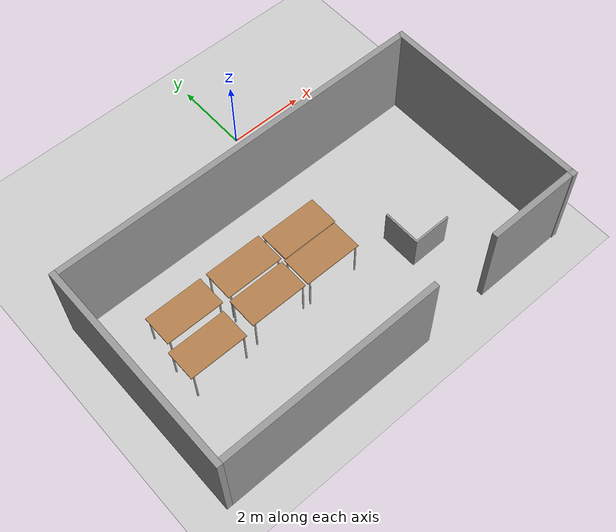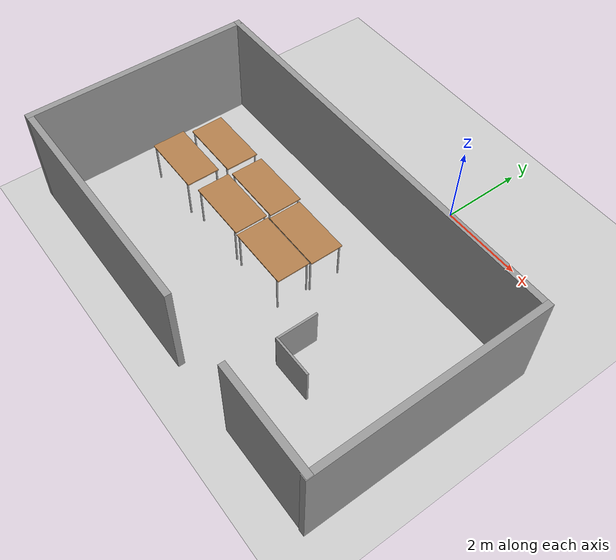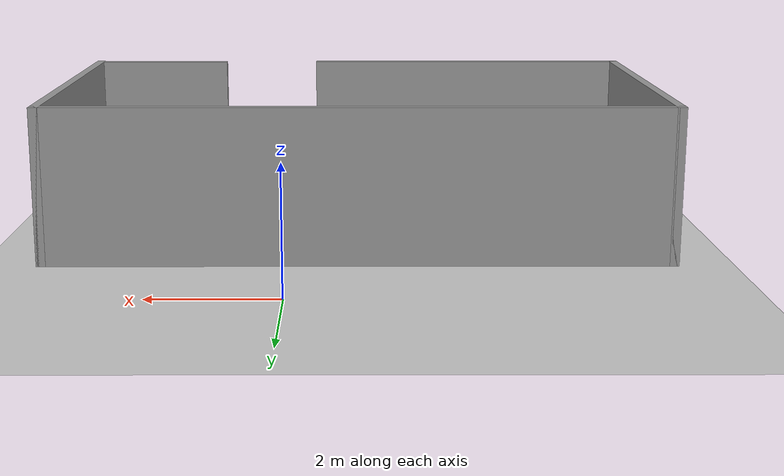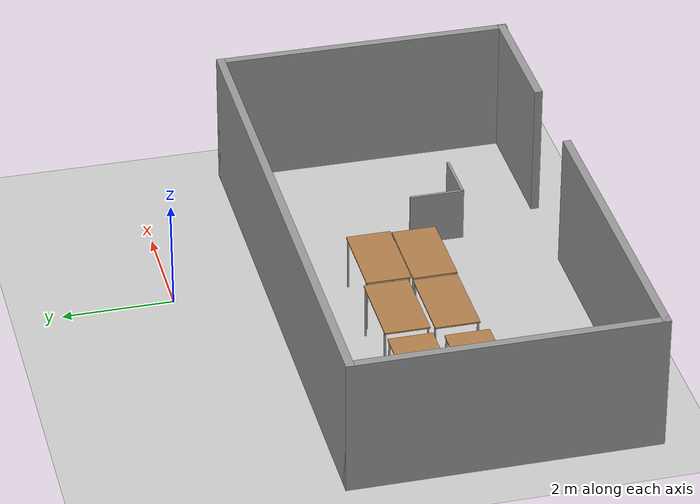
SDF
<sdf version="1.7">
 <world name="default">
  <light name="sun" type="directional">
   <pose>0 0 10 0 -0 0</pose>
   <diffuse>0.8 0.8 0.8 1</diffuse>
   <specular>0.2 0.2 0.2 1</specular>
   <attenuation>
    <range>1000</range>
    <constant>0.9</constant>
    <linear>0.01</linear>
    <quadratic>0.001</quadratic>
   </attenuation>
   <direction>-0.5 0.1 -0.9</direction>
   <spot><inner_angle>0</inner_angle><outer_angle>0</outer_angle><falloff>0</falloff></spot>
  </light>
  <model name="ground_plane">
   <static>1</static>
   <link name="link">
    <collision name="collision">
     <geometry><plane><normal>0 0 1</normal><size>100 100</size></plane></geometry>
     <surface>
      <contact><collide_bitmask>65535</collide_bitmask></contact>
      <friction><ode><mu>100</mu><mu2>50</mu2></ode></friction>
     </surface>
    </collision>
    <visual name="visual">
     <cast_shadows>0</cast_shadows>
     <geometry><plane><normal>0 0 1</normal><size>100 100</size></plane></geometry>
     <material>
      <script><uri>file://media/materials/scripts/gazebo.material</uri><name>Gazebo/Grey</name></script>
     </material>
    </visual>
   </link>
  </model>
  <gravity>0 0 -9.8</gravity>
  <magnetic_field>6e-06 2.3e-05 -4.2e-05</magnetic_field>
  <atmosphere type="adiabatic"/>
  <physics type="ode">
   <max_step_size>0.001</max_step_size>
   <real_time_factor>1</real_time_factor>
   <real_time_update_rate>1000</real_time_update_rate>
  </physics>
  <scene><ambient>0.4 0.4 0.4 1</ambient><background>0.7 0.7 0.7 1</background><shadows>1</shadows></scene>
  <spherical_coordinates>
   <surface_model>EARTH_WGS84</surface_model>
   <latitude_deg>0</latitude_deg>
   <longitude_deg>0</longitude_deg>
   <elevation>0</elevation>
   <heading_deg>0</heading_deg>
  </spherical_coordinates>
  <model name="table">
   <static>1</static>
   <link name="link">
    <collision name="surface">
     <pose>0 0 1 0 -0 0</pose>
     <geometry><box><size>1.5 0.8 0.03</size></box></geometry>
     <surface><friction><ode><mu>0.6</mu><mu2>0.6</mu2></ode></friction></surface>
    </collision>
    <visual name="visual1">
     <pose>0 0 1 0 -0 0</pose>
     <geometry><box><size>1.5 0.8 0.03</size></box></geometry>
     <material>
      <script><uri>file://media/materials/scripts/gazebo.material</uri><name>Gazebo/Wood</name></script>
     </material>
    </visual>
    <collision name="front_left_leg">
     <pose>0.68 0.38 0.5 0 -0 0</pose>
     <geometry><cylinder><radius>0.02</radius><length>1</length></cylinder></geometry>
    </collision>
    <visual name="front_left_leg">
     <pose>0.68 0.38 0.5 0 -0 0</pose>
     <geometry><cylinder><radius>0.02</radius><length>1</length></cylinder></geometry>
     <material>
      <script><uri>file://media/materials/scripts/gazebo.material</uri><name>Gazebo/Grey</name></script>
     </material>
    </visual>
    <collision name="front_right_leg">
     <pose>0.68 -0.38 0.5 0 -0 0</pose>
     <geometry><cylinder><radius>0.02</radius><length>1</length></cylinder></geometry>
    </collision>
    <visual name="front_right_leg">
     <pose>0.68 -0.38 0.5 0 -0 0</pose>
     <geometry><cylinder><radius>0.02</radius><length>1</length></cylinder></geometry>
     <material>
      <script><uri>file://media/materials/scripts/gazebo.material</uri><name>Gazebo/Grey</name></script>
     </material>
    </visual>
    <collision name="back_right_leg">
     <pose>-0.68 -0.38 0.5 0 -0 0</pose>
     <geometry><cylinder><radius>0.02</radius><length>1</length></cylinder></geometry>
    </collision>
    <visual name="back_right_leg">
     <pose>-0.68 -0.38 0.5 0 -0 0</pose>
     <geometry><cylinder><radius>0.02</radius><length>1</length></cylinder></geometry>
     <material>
      <script><uri>file://media/materials/scripts/gazebo.material</uri><name>Gazebo/Grey</name></script>
     </material>
    </visual>
    <collision name="back_left_leg">
     <pose>-0.68 0.38 0.5 0 -0 0</pose>
     <geometry><cylinder><radius>0.02</radius><length>1</length></cylinder></geometry>
    </collision>
    <visual name="back_left_leg">
     <pose>-0.68 0.38 0.5 0 -0 0</pose>
     <geometry><cylinder><radius>0.02</radius><length>1</length></cylinder></geometry>
     <material>
      <script><uri>file://media/materials/scripts/gazebo.material</uri><name>Gazebo/Grey</name></script>
     </material>
    </visual>
   </link>
   <pose>-0.980326 -4.3195 0 0 -0 0</pose>
  </model>
  <model name="table_clone">
   <static>1</static>
   <link name="link">
    <collision name="surface">
     <pose>0 0 1 0 -0 0</pose>
     <geometry><box><size>1.5 0.8 0.03</size></box></geometry>
     <surface><friction><ode><mu>0.6</mu><mu2>0.6</mu2></ode></friction></surface>
    </collision>
    <visual name="visual1">
     <pose>0 0 1 0 -0 0</pose>
     <geometry><box><size>1.5 0.8 0.03</size></box></geometry>
     <material>
      <script><uri>file://media/materials/scripts/gazebo.material</uri><name>Gazebo/Wood</name></script>
     </material>
    </visual>
    <collision name="front_left_leg">
     <pose>0.68 0.38 0.5 0 -0 0</pose>
     <geometry><cylinder><radius>0.02</radius><length>1</length></cylinder></geometry>
    </collision>
    <visual name="front_left_leg">
     <pose>0.68 0.38 0.5 0 -0 0</pose>
     <geometry><cylinder><radius>0.02</radius><length>1</length></cylinder></geometry>
     <material>
      <script><uri>file://media/materials/scripts/gazebo.material</uri><name>Gazebo/Grey</name></script>
     </material>
    </visual>
    <collision name="front_right_leg">
     <pose>0.68 -0.38 0.5 0 -0 0</pose>
     <geometry><cylinder><radius>0.02</radius><length>1</length></cylinder></geometry>
    </collision>
    <visual name="front_right_leg">
     <pose>0.68 -0.38 0.5 0 -0 0</pose>
     <geometry><cylinder><radius>0.02</radius><length>1</length></cylinder></geometry>
     <material>
      <script><uri>file://media/materials/scripts/gazebo.material</uri><name>Gazebo/Grey</name></script>
     </material>
    </visual>
    <collision name="back_right_leg">
     <pose>-0.68 -0.38 0.5 0 -0 0</pose>
     <geometry><cylinder><radius>0.02</radius><length>1</length></cylinder></geometry>
    </collision>
    <visual name="back_right_leg">
     <pose>-0.68 -0.38 0.5 0 -0 0</pose>
     <geometry><cylinder><radius>0.02</radius><length>1</length></cylinder></geometry>
     <material>
      <script><uri>file://media/materials/scripts/gazebo.material</uri><name>Gazebo/Grey</name></script>
     </material>
    </visual>
    <collision name="back_left_leg">
     <pose>-0.68 0.38 0.5 0 -0 0</pose>
     <geometry><cylinder><radius>0.02</radius><length>1</length></cylinder></geometry>
    </collision>
    <visual name="back_left_leg">
     <pose>-0.68 0.38 0.5 0 -0 0</pose>
     <geometry><cylinder><radius>0.02</radius><length>1</length></cylinder></geometry>
     <material>
      <script><uri>file://media/materials/scripts/gazebo.material</uri><name>Gazebo/Grey</name></script>
     </material>
    </visual>
   </link>
   <pose>-2.53597 -4.30412 0 0 -0 0</pose>
  </model>
  <model name="table_clone_0">
   <static>1</static>
   <link name="link">
    <collision name="surface">
     <pose>0 0 1 0 -0 0</pose>
     <geometry><box><size>1.5 0.8 0.03</size></box></geometry>
     <surface><friction><ode><mu>0.6</mu><mu2>0.6</mu2></ode></friction></surface>
    </collision>
    <visual name="visual1">
     <pose>0 0 1 0 -0 0</pose>
     <geometry><box><size>1.5 0.8 0.03</size></box></geometry>
     <material>
      <script><uri>file://media/materials/scripts/gazebo.material</uri><name>Gazebo/Wood</name></script>
     </material>
    </visual>
    <collision name="front_left_leg">
     <pose>0.68 0.38 0.5 0 -0 0</pose>
     <geometry><cylinder><radius>0.02</radius><length>1</length></cylinder></geometry>
    </collision>
    <visual name="front_left_leg">
     <pose>0.68 0.38 0.5 0 -0 0</pose>
     <geometry><cylinder><radius>0.02</radius><length>1</length></cylinder></geometry>
     <material>
      <script><uri>file://media/materials/scripts/gazebo.material</uri><name>Gazebo/Grey</name></script>
     </material>
    </visual>
    <collision name="front_right_leg">
     <pose>0.68 -0.38 0.5 0 -0 0</pose>
     <geometry><cylinder><radius>0.02</radius><length>1</length></cylinder></geometry>
    </collision>
    <visual name="front_right_leg">
     <pose>0.68 -0.38 0.5 0 -0 0</pose>
     <geometry><cylinder><radius>0.02</radius><length>1</length></cylinder></geometry>
     <material>
      <script><uri>file://media/materials/scripts/gazebo.material</uri><name>Gazebo/Grey</name></script>
     </material>
    </visual>
    <collision name="back_right_leg">
     <pose>-0.68 -0.38 0.5 0 -0 0</pose>
     <geometry><cylinder><radius>0.02</radius><length>1</length></cylinder></geometry>
    </collision>
    <visual name="back_right_leg">
     <pose>-0.68 -0.38 0.5 0 -0 0</pose>
     <geometry><cylinder><radius>0.02</radius><length>1</length></cylinder></geometry>
     <material>
      <script><uri>file://media/materials/scripts/gazebo.material</uri><name>Gazebo/Grey</name></script>
     </material>
    </visual>
    <collision name="back_left_leg">
     <pose>-0.68 0.38 0.5 0 -0 0</pose>
     <geometry><cylinder><radius>0.02</radius><length>1</length></cylinder></geometry>
    </collision>
    <visual name="back_left_leg">
     <pose>-0.68 0.38 0.5 0 -0 0</pose>
     <geometry><cylinder><radius>0.02</radius><length>1</length></cylinder></geometry>
     <material>
      <script><uri>file://media/materials/scripts/gazebo.material</uri><name>Gazebo/Grey</name></script>
     </material>
    </visual>
   </link>
   <pose>-0.939046 -3.49885 0 0 -0 0</pose>
  </model>
  <model name="table_clone_1">
   <static>1</static>
   <link name="link">
    <collision name="surface">
     <pose>0 0 1 0 -0 0</pose>
     <geometry><box><size>1.5 0.8 0.03</size></box></geometry>
     <surface><friction><ode><mu>0.6</mu><mu2>0.6</mu2></ode></friction></surface>
    </collision>
    <visual name="visual1">
     <pose>0 0 1 0 -0 0</pose>
     <geometry><box><size>1.5 0.8 0.03</size></box></geometry>
     <material>
      <script><uri>file://media/materials/scripts/gazebo.material</uri><name>Gazebo/Wood</name></script>
     </material>
    </visual>
    <collision name="front_left_leg">
     <pose>0.68 0.38 0.5 0 -0 0</pose>
     <geometry><cylinder><radius>0.02</radius><length>1</length></cylinder></geometry>
    </collision>
    <visual name="front_left_leg">
     <pose>0.68 0.38 0.5 0 -0 0</pose>
     <geometry><cylinder><radius>0.02</radius><length>1</length></cylinder></geometry>
     <material>
      <script><uri>file://media/materials/scripts/gazebo.material</uri><name>Gazebo/Grey</name></script>
     </material>
    </visual>
    <collision name="front_right_leg">
     <pose>0.68 -0.38 0.5 0 -0 0</pose>
     <geometry><cylinder><radius>0.02</radius><length>1</length></cylinder></geometry>
    </collision>
    <visual name="front_right_leg">
     <pose>0.68 -0.38 0.5 0 -0 0</pose>
     <geometry><cylinder><radius>0.02</radius><length>1</length></cylinder></geometry>
     <material>
      <script><uri>file://media/materials/scripts/gazebo.material</uri><name>Gazebo/Grey</name></script>
     </material>
    </visual>
    <collision name="back_right_leg">
     <pose>-0.68 -0.38 0.5 0 -0 0</pose>
     <geometry><cylinder><radius>0.02</radius><length>1</length></cylinder></geometry>
    </collision>
    <visual name="back_right_leg">
     <pose>-0.68 -0.38 0.5 0 -0 0</pose>
     <geometry><cylinder><radius>0.02</radius><length>1</length></cylinder></geometry>
     <material>
      <script><uri>file://media/materials/scripts/gazebo.material</uri><name>Gazebo/Grey</name></script>
     </material>
    </visual>
    <collision name="back_left_leg">
     <pose>-0.68 0.38 0.5 0 -0 0</pose>
     <geometry><cylinder><radius>0.02</radius><length>1</length></cylinder></geometry>
    </collision>
    <visual name="back_left_leg">
     <pose>-0.68 0.38 0.5 0 -0 0</pose>
     <geometry><cylinder><radius>0.02</radius><length>1</length></cylinder></geometry>
     <material>
      <script><uri>file://media/materials/scripts/gazebo.material</uri><name>Gazebo/Grey</name></script>
     </material>
    </visual>
   </link>
   <pose>-2.49568 -3.43081 0 0 -0 0</pose>
  </model>
  <model name="table_clone_2">
   <static>1</static>
   <link name="link">
    <collision name="surface">
     <pose>0 0 1 0 -0 0</pose>
     <geometry><box><size>1.5 0.8 0.03</size></box></geometry>
     <surface><friction><ode><mu>0.6</mu><mu2>0.6</mu2></ode></friction></surface>
    </collision>
    <visual name="visual1">
     <pose>0 0 1 0 -0 0</pose>
     <geometry><box><size>1.5 0.8 0.03</size></box></geometry>
     <material>
      <script><uri>file://media/materials/scripts/gazebo.material</uri><name>Gazebo/Wood</name></script>
     </material>
    </visual>
    <collision name="front_left_leg">
     <pose>0.68 0.38 0.5 0 -0 0</pose>
     <geometry><cylinder><radius>0.02</radius><length>1</length></cylinder></geometry>
    </collision>
    <visual name="front_left_leg">
     <pose>0.68 0.38 0.5 0 -0 0</pose>
     <geometry><cylinder><radius>0.02</radius><length>1</length></cylinder></geometry>
     <material>
      <script><uri>file://media/materials/scripts/gazebo.material</uri><name>Gazebo/Grey</name></script>
     </material>
    </visual>
    <collision name="front_right_leg">
     <pose>0.68 -0.38 0.5 0 -0 0</pose>
     <geometry><cylinder><radius>0.02</radius><length>1</length></cylinder></geometry>
    </collision>
    <visual name="front_right_leg">
     <pose>0.68 -0.38 0.5 0 -0 0</pose>
     <geometry><cylinder><radius>0.02</radius><length>1</length></cylinder></geometry>
     <material>
      <script><uri>file://media/materials/scripts/gazebo.material</uri><name>Gazebo/Grey</name></script>
     </material>
    </visual>
    <collision name="back_right_leg">
     <pose>-0.68 -0.38 0.5 0 -0 0</pose>
     <geometry><cylinder><radius>0.02</radius><length>1</length></cylinder></geometry>
    </collision>
    <visual name="back_right_leg">
     <pose>-0.68 -0.38 0.5 0 -0 0</pose>
     <geometry><cylinder><radius>0.02</radius><length>1</length></cylinder></geometry>
     <material>
      <script><uri>file://media/materials/scripts/gazebo.material</uri><name>Gazebo/Grey</name></script>
     </material>
    </visual>
    <collision name="back_left_leg">
     <pose>-0.68 0.38 0.5 0 -0 0</pose>
     <geometry><cylinder><radius>0.02</radius><length>1</length></cylinder></geometry>
    </collision>
    <visual name="back_left_leg">
     <pose>-0.68 0.38 0.5 0 -0 0</pose>
     <geometry><cylinder><radius>0.02</radius><length>1</length></cylinder></geometry>
     <material>
      <script><uri>file://media/materials/scripts/gazebo.material</uri><name>Gazebo/Grey</name></script>
     </material>
    </visual>
   </link>
   <pose>-4.16065 -3.43346 0 0 -0 0</pose>
  </model>
  <model name="table_clone_3">
   <static>1</static>
   <link name="link">
    <collision name="surface">
     <pose>0 0 1 0 -0 0</pose>
     <geometry><box><size>1.5 0.8 0.03</size></box></geometry>
     <surface><friction><ode><mu>0.6</mu><mu2>0.6</mu2></ode></friction></surface>
    </collision>
    <visual name="visual1">
     <pose>0 0 1 0 -0 0</pose>
     <geometry><box><size>1.5 0.8 0.03</size></box></geometry>
     <material>
      <script><uri>file://media/materials/scripts/gazebo.material</uri><name>Gazebo/Wood</name></script>
     </material>
    </visual>
    <collision name="front_left_leg">
     <pose>0.68 0.38 0.5 0 -0 0</pose>
     <geometry><cylinder><radius>0.02</radius><length>1</length></cylinder></geometry>
    </collision>
    <visual name="front_left_leg">
     <pose>0.68 0.38 0.5 0 -0 0</pose>
     <geometry><cylinder><radius>0.02</radius><length>1</length></cylinder></geometry>
     <material>
      <script><uri>file://media/materials/scripts/gazebo.material</uri><name>Gazebo/Grey</name></script>
     </material>
    </visual>
    <collision name="front_right_leg">
     <pose>0.68 -0.38 0.5 0 -0 0</pose>
     <geometry><cylinder><radius>0.02</radius><length>1</length></cylinder></geometry>
    </collision>
    <visual name="front_right_leg">
     <pose>0.68 -0.38 0.5 0 -0 0</pose>
     <geometry><cylinder><radius>0.02</radius><length>1</length></cylinder></geometry>
     <material>
      <script><uri>file://media/materials/scripts/gazebo.material</uri><name>Gazebo/Grey</name></script>
     </material>
    </visual>
    <collision name="back_right_leg">
     <pose>-0.68 -0.38 0.5 0 -0 0</pose>
     <geometry><cylinder><radius>0.02</radius><length>1</length></cylinder></geometry>
    </collision>
    <visual name="back_right_leg">
     <pose>-0.68 -0.38 0.5 0 -0 0</pose>
     <geometry><cylinder><radius>0.02</radius><length>1</length></cylinder></geometry>
     <material>
      <script><uri>file://media/materials/scripts/gazebo.material</uri><name>Gazebo/Grey</name></script>
     </material>
    </visual>
    <collision name="back_left_leg">
     <pose>-0.68 0.38 0.5 0 -0 0</pose>
     <geometry><cylinder><radius>0.02</radius><length>1</length></cylinder></geometry>
    </collision>
    <visual name="back_left_leg">
     <pose>-0.68 0.38 0.5 0 -0 0</pose>
     <geometry><cylinder><radius>0.02</radius><length>1</length></cylinder></geometry>
     <material>
      <script><uri>file://media/materials/scripts/gazebo.material</uri><name>Gazebo/Grey</name></script>
     </material>
    </visual>
   </link>
   <pose>-4.28446 -4.4012 0 0 -0 0</pose>
  </model>
  <model name="Untitled">
   <link name="link_0">
    <inertial>
     <mass>0.048137</mass>
     <inertia>
      <ixx>0.00802284</ixx>
      <ixy>0</ixy>
      <ixz>0</ixz>
      <iyy>0.00402071</iyy>
      <iyz>0</iyz>
      <izz>0.00402071</izz>
     </inertia>
    </inertial>
    <pose>-0.242567 0.237112 0 0 -0 0</pose>
    <visual name="visual">
     <geometry><box><size>0.048137 1 1</size></box></geometry>
     <material>
      <lighting>1</lighting>
      <script><uri>file://media/materials/scripts/gazebo.material</uri><name>Gazebo/Grey</name></script>
      <shader type="pixel"/>
     </material>
    </visual>
    <collision name="collision">
     <geometry><box><size>0.048137 1 1</size></box></geometry>
     <surface>
      <friction>
       <ode><mu>1</mu><mu2>1</mu2><fdir1>0 0 0</fdir1><slip1>0</slip1><slip2>0</slip2></ode>
       <torsional>
        <coefficient>1</coefficient>
        <patch_radius>0</patch_radius>
        <surface_radius>0</surface_radius>
        <use_patch_radius>1</use_patch_radius>
        <ode><slip>0</slip></ode>
       </torsional>
      </friction>
      <bounce><restitution_coefficient>0</restitution_coefficient><threshold>1e+06</threshold></bounce>
      <contact>
       <collide_without_contact>0</collide_without_contact>
       <collide_without_contact_bitmask>1</collide_without_contact_bitmask>
       <collide_bitmask>1</collide_bitmask>
       <ode>
        <soft_cfm>0</soft_cfm>
        <soft_erp>0.2</soft_erp>
        <kp>1e+13</kp>
        <kd>1</kd>
        <max_vel>0.01</max_vel>
        <min_depth>0</min_depth>
       </ode>
       <bullet>
        <split_impulse>1</split_impulse>
        <split_impulse_penetration_threshold>-0.01</split_impulse_penetration_threshold>
        <soft_cfm>0</soft_cfm>
        <soft_erp>0.2</soft_erp>
        <kp>1e+13</kp>
        <kd>1</kd>
       </bullet>
      </contact>
     </surface>
    </collision>
   </link>
   <link name="link_0_clone">
    <inertial>
     <mass>0.048137</mass>
     <inertia>
      <ixx>0.00802284</ixx>
      <ixy>0</ixy>
      <ixz>0</ixz>
      <iyy>0.00402071</iyy>
      <iyz>0</iyz>
      <izz>0.00402071</izz>
     </inertia>
    </inertial>
    <pose>0.242566 -0.237114 0 0 -0 1.57922</pose>
    <visual name="visual">
     <geometry><box><size>0.048137 1 1</size></box></geometry>
     <material>
      <lighting>1</lighting>
      <script><uri>file://media/materials/scripts/gazebo.material</uri><name>Gazebo/Grey</name></script>
      <shader type="pixel"/>
     </material>
    </visual>
    <collision name="collision">
     <geometry><box><size>0.048137 1 1</size></box></geometry>
     <surface>
      <friction>
       <ode><mu>1</mu><mu2>1</mu2><fdir1>0 0 0</fdir1><slip1>0</slip1><slip2>0</slip2></ode>
       <torsional>
        <coefficient>1</coefficient>
        <patch_radius>0</patch_radius>
        <surface_radius>0</surface_radius>
        <use_patch_radius>1</use_patch_radius>
        <ode><slip>0</slip></ode>
       </torsional>
      </friction>
      <bounce><restitution_coefficient>0</restitution_coefficient><threshold>1e+06</threshold></bounce>
      <contact>
       <collide_without_contact>0</collide_without_contact>
       <collide_without_contact_bitmask>1</collide_without_contact_bitmask>
       <collide_bitmask>1</collide_bitmask>
       <ode>
        <soft_cfm>0</soft_cfm>
        <soft_erp>0.2</soft_erp>
        <kp>1e+13</kp>
        <kd>1</kd>
        <max_vel>0.01</max_vel>
        <min_depth>0</min_depth>
       </ode>
       <bullet>
        <split_impulse>1</split_impulse>
        <split_impulse_penetration_threshold>-0.01</split_impulse_penetration_threshold>
        <soft_cfm>0</soft_cfm>
        <soft_erp>0.2</soft_erp>
        <kp>1e+13</kp>
        <kd>1</kd>
       </bullet>
      </contact>
     </surface>
    </collision>
   </link>
   <static>0</static>
   <pose>1.06962 -5.26605 0.5 0 -0 0</pose>
  </model>
  <model name="804_walls">
   <link name="Wall_0">
    <pose>0 1.8475 0 0 -0 0</pose>
    <visual name="Wall_0_Visual">
     <pose>0 0 1.25 0 -0 0</pose>
     <geometry><box><size>10 0.15 2.5</size></box></geometry>
     <material>
      <script><uri>file://media/materials/scripts/gazebo.material</uri><name>Gazebo/Grey</name></script>
      <ambient>1 1 1 1</ambient>
      <shader type="pixel"/>
     </material>
     <meta><layer>0</layer></meta>
    </visual>
    <collision name="Wall_0_Collision">
     <pose>0 0 1.25 0 -0 0</pose>
     <geometry><box><size>10 0.15 2.5</size></box></geometry>
     <surface>
      <friction>
       <ode><mu>1</mu><mu2>1</mu2><fdir1>0 0 0</fdir1><slip1>0</slip1><slip2>0</slip2></ode>
       <torsional>
        <coefficient>1</coefficient>
        <patch_radius>0</patch_radius>
        <surface_radius>0</surface_radius>
        <use_patch_radius>1</use_patch_radius>
        <ode><slip>0</slip></ode>
       </torsional>
      </friction>
      <bounce><restitution_coefficient>0</restitution_coefficient><threshold>1e+06</threshold></bounce>
      <contact>
       <collide_without_contact>0</collide_without_contact>
       <collide_without_contact_bitmask>1</collide_without_contact_bitmask>
       <collide_bitmask>1</collide_bitmask>
       <ode>
        <soft_cfm>0</soft_cfm>
        <soft_erp>0.2</soft_erp>
        <kp>1e+13</kp>
        <kd>1</kd>
        <max_vel>0.01</max_vel>
        <min_depth>0</min_depth>
       </ode>
       <bullet>
        <split_impulse>1</split_impulse>
        <split_impulse_penetration_threshold>-0.01</split_impulse_penetration_threshold>
        <soft_cfm>0</soft_cfm>
        <soft_erp>0.2</soft_erp>
        <kp>1e+13</kp>
        <kd>1</kd>
       </bullet>
      </contact>
     </surface>
    </collision>
   </link>
   <link name="Wall_3">
    <pose>4.925 -0.8275 0 0 0 -1.5708</pose>
    <visual name="Wall_3_Visual">
     <pose>0 0 1.25 0 -0 0</pose>
     <geometry><box><size>5.5 0.15 2.5</size></box></geometry>
     <material>
      <script><uri>file://media/materials/scripts/gazebo.material</uri><name>Gazebo/Grey</name></script>
      <ambient>1 1 1 1</ambient>
      <shader type="pixel"/>
     </material>
     <meta><layer>0</layer></meta>
    </visual>
    <collision name="Wall_3_Collision">
     <pose>0 0 1.25 0 -0 0</pose>
     <geometry><box><size>5.5 0.15 2.5</size></box></geometry>
     <surface>
      <friction>
       <ode><mu>1</mu><mu2>1</mu2><fdir1>0 0 0</fdir1><slip1>0</slip1><slip2>0</slip2></ode>
       <torsional>
        <coefficient>1</coefficient>
        <patch_radius>0</patch_radius>
        <surface_radius>0</surface_radius>
        <use_patch_radius>1</use_patch_radius>
        <ode><slip>0</slip></ode>
       </torsional>
      </friction>
      <bounce><restitution_coefficient>0</restitution_coefficient><threshold>1e+06</threshold></bounce>
      <contact>
       <collide_without_contact>0</collide_without_contact>
       <collide_without_contact_bitmask>1</collide_without_contact_bitmask>
       <collide_bitmask>1</collide_bitmask>
       <ode>
        <soft_cfm>0</soft_cfm>
        <soft_erp>0.2</soft_erp>
        <kp>1e+13</kp>
        <kd>1</kd>
        <max_vel>0.01</max_vel>
        <min_depth>0</min_depth>
       </ode>
       <bullet>
        <split_impulse>1</split_impulse>
        <split_impulse_penetration_threshold>-0.01</split_impulse_penetration_threshold>
        <soft_cfm>0</soft_cfm>
        <soft_erp>0.2</soft_erp>
        <kp>1e+13</kp>
        <kd>1</kd>
       </bullet>
      </contact>
     </surface>
    </collision>
   </link>
   <link name="Wall_4">
    <pose>-2.10673 -3.50249 0 0 -0 3.14159</pose>
    <inertial>
     <inertia><ixx>0</ixx><ixy>0</ixy><ixz>0</ixz><iyy>0</iyy><iyz>0</iyz><izz>0</izz></inertia>
     <mass>0</mass>
    </inertial>
    <visual name="Wall_4_Visual">
     <pose>0 0 1.25 0 -0 0</pose>
     <geometry><box><size>5.77578 0.15 2.5</size></box></geometry>
     <material>
      <script><uri>file://media/materials/scripts/gazebo.material</uri><name>Gazebo/Grey</name></script>
      <ambient>1 1 1 1</ambient>
      <shader type="pixel"/>
     </material>
     <meta><layer>0</layer></meta>
    </visual>
    <collision name="Wall_4_Collision">
     <pose>0 0 1.25 0 -0 0</pose>
     <geometry><box><size>5.77578 0.15 2.5</size></box></geometry>
     <surface>
      <friction>
       <ode><mu>1</mu><mu2>1</mu2><fdir1>0 0 0</fdir1><slip1>0</slip1><slip2>0</slip2></ode>
       <torsional>
        <coefficient>1</coefficient>
        <patch_radius>0</patch_radius>
        <surface_radius>0</surface_radius>
        <use_patch_radius>1</use_patch_radius>
        <ode><slip>0</slip></ode>
       </torsional>
      </friction>
      <bounce><restitution_coefficient>0</restitution_coefficient><threshold>1e+06</threshold></bounce>
      <contact>
       <collide_without_contact>0</collide_without_contact>
       <collide_without_contact_bitmask>1</collide_without_contact_bitmask>
       <collide_bitmask>1</collide_bitmask>
       <ode>
        <soft_cfm>0</soft_cfm>
        <soft_erp>0.2</soft_erp>
        <kp>1e+13</kp>
        <kd>1</kd>
        <max_vel>0.01</max_vel>
        <min_depth>0</min_depth>
       </ode>
       <bullet>
        <split_impulse>1</split_impulse>
        <split_impulse_penetration_threshold>-0.01</split_impulse_penetration_threshold>
        <soft_cfm>0</soft_cfm>
        <soft_erp>0.2</soft_erp>
        <kp>1e+13</kp>
        <kd>1</kd>
       </bullet>
      </contact>
     </surface>
    </collision>
   </link>
   <link name="Wall_4_clone">
    <pose>3.73936 -3.4854 0 0 -0 3.14159</pose>
    <inertial>
     <inertia><ixx>0</ixx><ixy>0</ixy><ixz>0</ixz><iyy>0</iyy><iyz>0</iyz><izz>0</izz></inertia>
     <mass>0</mass>
    </inertial>
    <visual name="Wall_4_Visual">
     <pose>0 0 1.25 0 -0 0</pose>
     <geometry><box><size>2.49649 0.15 2.5</size></box></geometry>
     <material>
      <script><uri>file://media/materials/scripts/gazebo.material</uri><name>Gazebo/Grey</name></script>
      <ambient>1 1 1 1</ambient>
      <shader type="pixel"/>
     </material>
     <meta><layer>0</layer></meta>
    </visual>
    <collision name="Wall_4_Collision">
     <pose>0 0 1.25 0 -0 0</pose>
     <geometry><box><size>2.49649 0.15 2.5</size></box></geometry>
     <surface>
      <friction>
       <ode><mu>1</mu><mu2>1</mu2><fdir1>0 0 0</fdir1><slip1>0</slip1><slip2>0</slip2></ode>
       <torsional>
        <coefficient>1</coefficient>
        <patch_radius>0</patch_radius>
        <surface_radius>0</surface_radius>
        <use_patch_radius>1</use_patch_radius>
        <ode><slip>0</slip></ode>
       </torsional>
      </friction>
      <bounce><restitution_coefficient>0</restitution_coefficient><threshold>1e+06</threshold></bounce>
      <contact>
       <collide_without_contact>0</collide_without_contact>
       <collide_without_contact_bitmask>1</collide_without_contact_bitmask>
       <collide_bitmask>1</collide_bitmask>
       <ode>
        <soft_cfm>0</soft_cfm>
        <soft_erp>0.2</soft_erp>
        <kp>1e+13</kp>
        <kd>1</kd>
        <max_vel>0.01</max_vel>
        <min_depth>0</min_depth>
       </ode>
       <bullet>
        <split_impulse>1</split_impulse>
        <split_impulse_penetration_threshold>-0.01</split_impulse_penetration_threshold>
        <soft_cfm>0</soft_cfm>
        <soft_erp>0.2</soft_erp>
        <kp>1e+13</kp>
        <kd>1</kd>
       </bullet>
      </contact>
     </surface>
    </collision>
   </link>
   <link name="Wall_5">
    <pose>-4.925 -0.8275 0 0 -0 1.5708</pose>
    <inertial>
     <inertia><ixx>0</ixx><ixy>0</ixy><ixz>0</ixz><iyy>0</iyy><iyz>0</iyz><izz>0</izz></inertia>
     <mass>0</mass>
    </inertial>
    <visual name="Wall_5_Visual">
     <pose>0 0 1.25 0 -0 0</pose>
     <geometry><box><size>5.5 0.15 2.5</size></box></geometry>
     <material>
      <script><uri>file://media/materials/scripts/gazebo.material</uri><name>Gazebo/Grey</name></script>
      <ambient>1 1 1 1</ambient>
      <shader type="pixel"/>
     </material>
     <meta><layer>0</layer></meta>
    </visual>
    <collision name="Wall_5_Collision">
     <pose>0 0 1.25 0 -0 0</pose>
     <geometry><box><size>5.5 0.15 2.5</size></box></geometry>
     <surface>
      <friction>
       <ode><mu>1</mu><mu2>1</mu2><fdir1>0 0 0</fdir1><slip1>0</slip1><slip2>0</slip2></ode>
       <torsional>
        <coefficient>1</coefficient>
        <patch_radius>0</patch_radius>
        <surface_radius>0</surface_radius>
        <use_patch_radius>1</use_patch_radius>
        <ode><slip>0</slip></ode>
       </torsional>
      </friction>
      <bounce><restitution_coefficient>0</restitution_coefficient><threshold>1e+06</threshold></bounce>
      <contact>
       <collide_without_contact>0</collide_without_contact>
       <collide_without_contact_bitmask>1</collide_without_contact_bitmask>
       <collide_bitmask>1</collide_bitmask>
       <ode>
        <soft_cfm>0</soft_cfm>
        <soft_erp>0.2</soft_erp>
        <kp>1e+13</kp>
        <kd>1</kd>
        <max_vel>0.01</max_vel>
        <min_depth>0</min_depth>
       </ode>
       <bullet>
        <split_impulse>1</split_impulse>
        <split_impulse_penetration_threshold>-0.01</split_impulse_penetration_threshold>
        <soft_cfm>0</soft_cfm>
        <soft_erp>0.2</soft_erp>
        <kp>1e+13</kp>
        <kd>1</kd>
       </bullet>
      </contact>
     </surface>
    </collision>
   </link>
   <static>1</static>
   <pose>-1.075 -3.5775 0 0 -0 0</pose>
  </model>
 </world>
</sdf>
